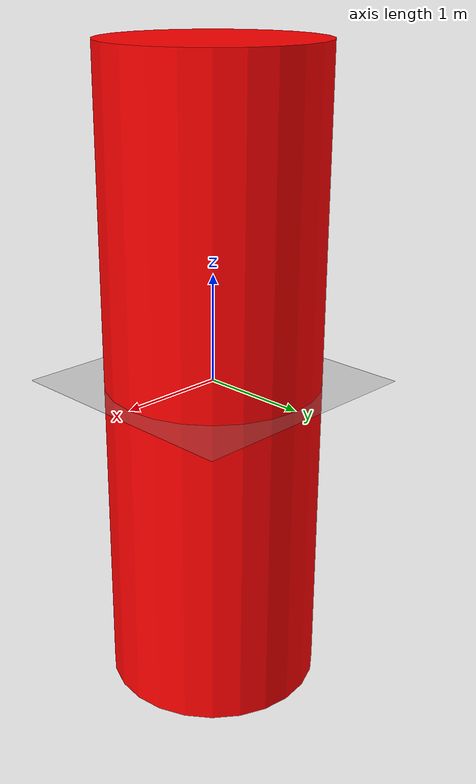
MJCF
<?xml version="1.0" ?>
<mujoco model="hello">
  <compiler balanceinertia="true"/>
  <worldbody>
    <geom name="floor" type="plane" rgba="0.5 0.5 0.5 1.0"/>
    <body name="robot">
      <geom type="sphere" rgba="1 0 0 1" size="0.2"/>
      <geom type="cylinder" rgba="1 0 0 1" size="1 3"/>
    </body>
  </worldbody>
</mujoco>
